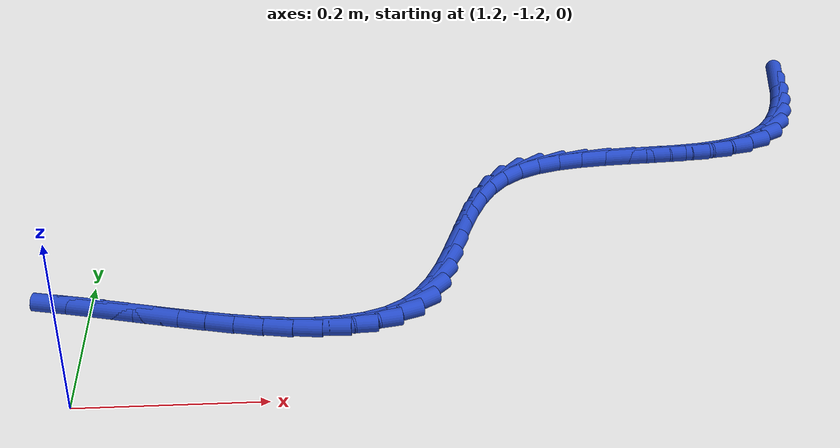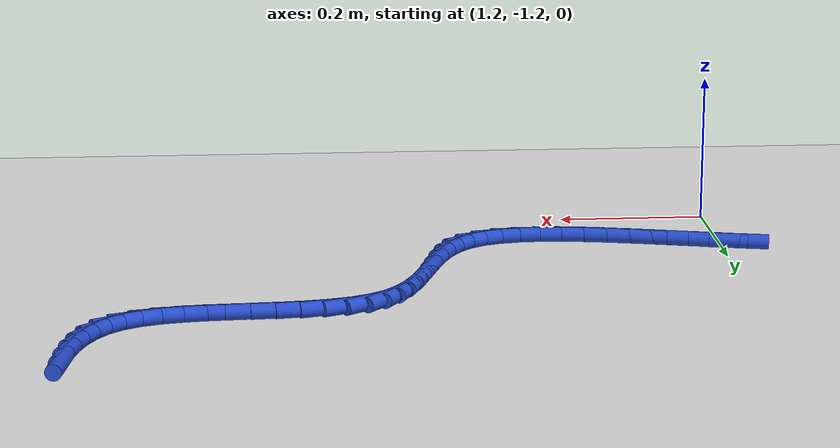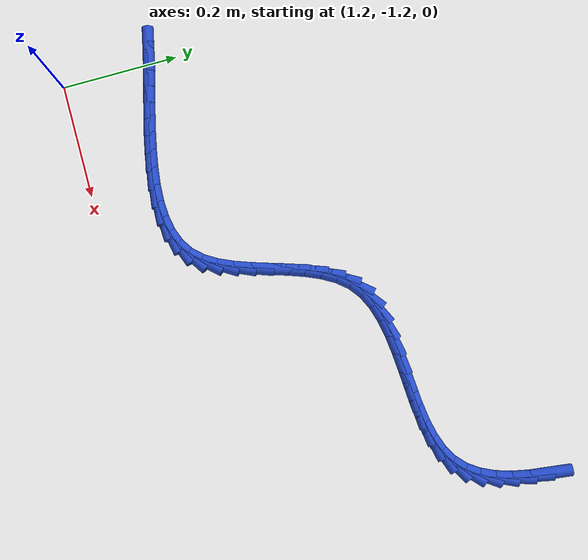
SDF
<sdf version="1.6">
 <world name="default">
  <model name="ground_plane">
   <static>1</static>
   <link name="link">
    <collision name="collision">
     <geometry><plane><normal>0 0 1</normal><size>100 100</size></plane></geometry>
     <surface><friction><ode><mu>100</mu><mu2>50</mu2></ode></friction></surface>
    </collision>
    <visual name="visual">
     <cast_shadows>0</cast_shadows>
     <geometry><plane><normal>0 0 1</normal><size>100 100</size></plane></geometry>
     <material>
      <script><uri>file://media/materials/scripts/gazebo.material</uri><name>Gazebo/WhiteGlow</name></script>
     </material>
    </visual>
   </link>
  </model>
  <model name="line">
   <link name="link_144">
    <pose>2.0479546052805664 -0.5950065517371383 0.01 0 1.57 1.4376507661106692</pose>
    <collision name="collision">
     <geometry><cylinder><radius>0.01</radius><length>0.08</length></cylinder></geometry>
    </collision>
    <visual name="visual">
     <material>
      <script><name>Gazebo/Blue</name><uri>file://media/materials/scripts/gazebo.material</uri></script>
     </material>
     <geometry><cylinder><radius>0.01</radius><length>0.08</length></cylinder></geometry>
    </visual>
   </link>
   <link name="link_145">
    <pose>2.0439442196380284 -0.6249486632755074 0.01 0 1.57 1.3622279371023438</pose>
    <collision name="collision">
     <geometry><cylinder><radius>0.01</radius><length>0.08</length></cylinder></geometry>
    </collision>
    <visual name="visual">
     <material>
      <script><name>Gazebo/Blue</name><uri>file://media/materials/scripts/gazebo.material</uri></script>
     </material>
     <geometry><cylinder><radius>0.01</radius><length>0.08</length></cylinder></geometry>
    </visual>
   </link>
   <link name="link_146">
    <pose>2.0379614732034974 -0.6532163334039117 0.01 0 1.57 1.2615805076250688</pose>
    <collision name="collision">
     <geometry><cylinder><radius>0.01</radius><length>0.08</length></cylinder></geometry>
    </collision>
    <visual name="visual">
     <material>
      <script><name>Gazebo/Blue</name><uri>file://media/materials/scripts/gazebo.material</uri></script>
     </material>
     <geometry><cylinder><radius>0.01</radius><length>0.08</length></cylinder></geometry>
    </visual>
   </link>
   <link name="link_147">
    <pose>2.02963819869982 -0.6792702817698875 0.01 0 1.57 1.1286086131254756</pose>
    <collision name="collision">
     <geometry><cylinder><radius>0.01</radius><length>0.08</length></cylinder></geometry>
    </collision>
    <visual name="visual">
     <material>
      <script><name>Gazebo/Blue</name><uri>file://media/materials/scripts/gazebo.material</uri></script>
     </material>
     <geometry><cylinder><radius>0.01</radius><length>0.08</length></cylinder></geometry>
    </visual>
   </link>
   <link name="link_148">
    <pose>2.0186062288498445 -0.7025712280209722 0.01 0 1.57 0.9566315821636667</pose>
    <collision name="collision">
     <geometry><cylinder><radius>0.01</radius><length>0.08</length></cylinder></geometry>
    </collision>
    <visual name="visual">
     <material>
      <script><name>Gazebo/Blue</name><uri>file://media/materials/scripts/gazebo.material</uri></script>
     </material>
     <geometry><cylinder><radius>0.01</radius><length>0.08</length></cylinder></geometry>
    </visual>
   </link>
   <link name="link_149">
    <pose>2.004497396376417 -0.7225798918047025 0.01 0 1.57 0.7446048535611302</pose>
    <collision name="collision">
     <geometry><cylinder><radius>0.01</radius><length>0.08</length></cylinder></geometry>
    </collision>
    <visual name="visual">
     <material>
      <script><name>Gazebo/Blue</name><uri>file://media/materials/scripts/gazebo.material</uri></script>
     </material>
     <geometry><cylinder><radius>0.01</radius><length>0.08</length></cylinder></geometry>
    </visual>
   </link>
   <link name="link_150">
    <pose>1.9869435340023853 -0.7387569927686164 0.01 0 1.57 0.5143462068614901</pose>
    <collision name="collision">
     <geometry><cylinder><radius>0.01</radius><length>0.08</length></cylinder></geometry>
    </collision>
    <visual name="visual">
     <material>
      <script><name>Gazebo/Blue</name><uri>file://media/materials/scripts/gazebo.material</uri></script>
     </material>
     <geometry><cylinder><radius>0.01</radius><length>0.08</length></cylinder></geometry>
    </visual>
   </link>
   <link name="link_151">
    <pose>1.965720147426876 -0.7507498767825329 0.01 0 1.57 0.3288322965216411</pose>
    <collision name="collision">
     <geometry><cylinder><radius>0.01</radius><length>0.08</length></cylinder></geometry>
    </collision>
    <visual name="visual">
     <material>
      <script><name>Gazebo/Blue</name><uri>file://media/materials/scripts/gazebo.material</uri></script>
     </material>
     <geometry><cylinder><radius>0.01</radius><length>0.08</length></cylinder></geometry>
    </visual>
   </link>
   <link name="link_152">
    <pose>1.941282278218264 -0.7590885832851447 0.01 0 1.57 0.20009955347567088</pose>
    <collision name="collision">
     <geometry><cylinder><radius>0.01</radius><length>0.08</length></cylinder></geometry>
    </collision>
    <visual name="visual">
     <material>
      <script><name>Gazebo/Blue</name><uri>file://media/materials/scripts/gazebo.material</uri></script>
     </material>
     <geometry><cylinder><radius>0.01</radius><length>0.08</length></cylinder></geometry>
    </visual>
   </link>
   <link name="link_153">
    <pose>1.9142856753664834 -0.7645638637073312 0.01 0 1.57 0.1172007658165977</pose>
    <collision name="collision">
     <geometry><cylinder><radius>0.01</radius><length>0.08</length></cylinder></geometry>
    </collision>
    <visual name="visual">
     <material>
      <script><name>Gazebo/Blue</name><uri>file://media/materials/scripts/gazebo.material</uri></script>
     </material>
     <geometry><cylinder><radius>0.01</radius><length>0.08</length></cylinder></geometry>
    </visual>
   </link>
   <link name="link_154">
    <pose>1.8853861174454984 -0.7679665079086057 0.01 0 1.57 0.07023346373087958</pose>
    <collision name="collision">
     <geometry><cylinder><radius>0.01</radius><length>0.08</length></cylinder></geometry>
    </collision>
    <visual name="visual">
     <material>
      <script><name>Gazebo/Blue</name><uri>file://media/materials/scripts/gazebo.material</uri></script>
     </material>
     <geometry><cylinder><radius>0.01</radius><length>0.08</length></cylinder></geometry>
    </visual>
   </link>
   <link name="link_155">
    <pose>1.8552393830292737 -0.7700873057484804 0.01 0 1.57 0.05297058218416866</pose>
    <collision name="collision">
     <geometry><cylinder><radius>0.01</radius><length>0.08</length></cylinder></geometry>
    </collision>
    <visual name="visual">
     <material>
      <script><name>Gazebo/Blue</name><uri>file://media/materials/scripts/gazebo.material</uri></script>
     </material>
     <geometry><cylinder><radius>0.01</radius><length>0.08</length></cylinder></geometry>
    </visual>
   </link>
   <link name="link_156">
    <pose>1.8245012506917744 -0.7717170470864678 0.01 0 1.57 0.06282035174361103</pose>
    <collision name="collision">
     <geometry><cylinder><radius>0.01</radius><length>0.08</length></cylinder></geometry>
    </collision>
    <visual name="visual">
     <material>
      <script><name>Gazebo/Blue</name><uri>file://media/materials/scripts/gazebo.material</uri></script>
     </material>
     <geometry><cylinder><radius>0.01</radius><length>0.08</length></cylinder></geometry>
    </visual>
   </link>
   <link name="link_157">
    <pose>1.7938274990069663 -0.7736465217820816 0.01 0 1.57 0.10048300315026917</pose>
    <collision name="collision">
     <geometry><cylinder><radius>0.01</radius><length>0.08</length></cylinder></geometry>
    </collision>
    <visual name="visual">
     <material>
      <script><name>Gazebo/Blue</name><uri>file://media/materials/scripts/gazebo.material</uri></script>
     </material>
     <geometry><cylinder><radius>0.01</radius><length>0.08</length></cylinder></geometry>
    </visual>
   </link>
   <link name="link_158">
    <pose>1.7638739065488127 -0.7766665196948335 0.01 0 1.57 0.16985593003074778</pose>
    <collision name="collision">
     <geometry><cylinder><radius>0.01</radius><length>0.08</length></cylinder></geometry>
    </collision>
    <visual name="visual">
     <material>
      <script><name>Gazebo/Blue</name><uri>file://media/materials/scripts/gazebo.material</uri></script>
     </material>
     <geometry><cylinder><radius>0.01</radius><length>0.08</length></cylinder></geometry>
    </visual>
   </link>
   <link name="link_159">
    <pose>1.7352962518912791 -0.7815678306842366 0.01 0 1.57 0.27791164235856064</pose>
    <collision name="collision">
     <geometry><cylinder><radius>0.01</radius><length>0.08</length></cylinder></geometry>
    </collision>
    <visual name="visual">
     <material>
      <script><name>Gazebo/Blue</name><uri>file://media/materials/scripts/gazebo.material</uri></script>
     </material>
     <geometry><cylinder><radius>0.01</radius><length>0.08</length></cylinder></geometry>
    </visual>
   </link>
   <link name="link_160">
    <pose>1.7087503136083313 -0.7891412446098036 0.01 0 1.57 0.433261512053706</pose>
    <collision name="collision">
     <geometry><cylinder><radius>0.01</radius><length>0.08</length></cylinder></geometry>
    </collision>
    <visual name="visual">
     <material>
      <script><name>Gazebo/Blue</name><uri>file://media/materials/scripts/gazebo.material</uri></script>
     </material>
     <geometry><cylinder><radius>0.01</radius><length>0.08</length></cylinder></geometry>
    </visual>
   </link>
   <link name="link_161">
    <pose>1.6848918702739328 -0.800177551331047 0.01 0 1.57 0.6404092126811372</pose>
    <collision name="collision">
     <geometry><cylinder><radius>0.01</radius><length>0.08</length></cylinder></geometry>
    </collision>
    <visual name="visual">
     <material>
      <script><name>Gazebo/Blue</name><uri>file://media/materials/scripts/gazebo.material</uri></script>
     </material>
     <geometry><cylinder><radius>0.01</radius><length>0.08</length></cylinder></geometry>
    </visual>
   </link>
   <link name="link_162">
    <pose>1.6643754595098388 -0.8154659718224161 0.01 0 1.57 0.8658150090090925</pose>
    <collision name="collision">
     <geometry><cylinder><radius>0.01</radius><length>0.08</length></cylinder></geometry>
    </collision>
    <visual name="visual">
     <material>
      <script><name>Gazebo/Blue</name><uri>file://media/materials/scripts/gazebo.material</uri></script>
     </material>
     <geometry><cylinder><radius>0.01</radius><length>0.08</length></cylinder></geometry>
    </visual>
   </link>
   <link name="link_163">
    <pose>1.6474810330420186 -0.8353221534493009 0.01 0 1.57 1.0388641176757252</pose>
    <collision name="collision">
     <geometry><cylinder><radius>0.01</radius><length>0.08</length></cylinder></geometry>
    </collision>
    <visual name="visual">
     <material>
      <script><name>Gazebo/Blue</name><uri>file://media/materials/scripts/gazebo.material</uri></script>
     </material>
     <geometry><cylinder><radius>0.01</radius><length>0.08</length></cylinder></geometry>
    </visual>
   </link>
   <link name="link_164">
    <pose>1.6335899707954051 -0.8589257160448123 0.01 0 1.57 1.1550752388052643</pose>
    <collision name="collision">
     <geometry><cylinder><radius>0.01</radius><length>0.08</length></cylinder></geometry>
    </collision>
    <visual name="visual">
     <material>
      <script><name>Gazebo/Blue</name><uri>file://media/materials/scripts/gazebo.material</uri></script>
     </material>
     <geometry><cylinder><radius>0.01</radius><length>0.08</length></cylinder></geometry>
    </visual>
   </link>
   <link name="link_165">
    <pose>1.6219516972603725 -0.8852894535896147 0.01 0 1.57 1.2250253661963921</pose>
    <collision name="collision">
     <geometry><cylinder><radius>0.01</radius><length>0.08</length></cylinder></geometry>
    </collision>
    <visual name="visual">
     <material>
      <script><name>Gazebo/Blue</name><uri>file://media/materials/scripts/gazebo.material</uri></script>
     </material>
     <geometry><cylinder><radius>0.01</radius><length>0.08</length></cylinder></geometry>
    </visual>
   </link>
   <link name="link_166">
    <pose>1.6118156369272965 -0.9134261600643732 0.01 0 1.57 1.2570454646384208</pose>
    <collision name="collision">
     <geometry><cylinder><radius>0.01</radius><length>0.08</length></cylinder></geometry>
    </collision>
    <visual name="visual">
     <material>
      <script><name>Gazebo/Blue</name><uri>file://media/materials/scripts/gazebo.material</uri></script>
     </material>
     <geometry><cylinder><radius>0.01</radius><length>0.08</length></cylinder></geometry>
    </visual>
   </link>
   <link name="link_167">
    <pose>1.6024312142865509 -0.9423486294497522 0.01 0 1.57 1.255021276156148</pose>
    <collision name="collision">
     <geometry><cylinder><radius>0.01</radius><length>0.08</length></cylinder></geometry>
    </collision>
    <visual name="visual">
     <material>
      <script><name>Gazebo/Blue</name><uri>file://media/materials/scripts/gazebo.material</uri></script>
     </material>
     <geometry><cylinder><radius>0.01</radius><length>0.08</length></cylinder></geometry>
    </visual>
   </link>
   <link name="link_168">
    <pose>1.5930478538285109 -0.9710696557264163 0.01 0 1.57 1.218146044553028</pose>
    <collision name="collision">
     <geometry><cylinder><radius>0.01</radius><length>0.08</length></cylinder></geometry>
    </collision>
    <visual name="visual">
     <material>
      <script><name>Gazebo/Blue</name><uri>file://media/materials/scripts/gazebo.material</uri></script>
     </material>
     <geometry><cylinder><radius>0.01</radius><length>0.08</length></cylinder></geometry>
    </visual>
   </link>
   <link name="link_169">
    <pose>1.5829149800435516 -0.9986020328750308 0.01 0 1.57 1.1406683261786505</pose>
    <collision name="collision">
     <geometry><cylinder><radius>0.01</radius><length>0.08</length></cylinder></geometry>
    </collision>
    <visual name="visual">
     <material>
      <script><name>Gazebo/Blue</name><uri>file://media/materials/scripts/gazebo.material</uri></script>
     </material>
     <geometry><cylinder><radius>0.01</radius><length>0.08</length></cylinder></geometry>
    </visual>
   </link>
   <link name="link_170">
    <pose>1.5712820174220463 -1.0239585548762593 0.01 0 1.57 1.0117851667576359</pose>
    <collision name="collision">
     <geometry><cylinder><radius>0.01</radius><length>0.08</length></cylinder></geometry>
    </collision>
    <visual name="visual">
     <material>
      <script><name>Gazebo/Blue</name><uri>file://media/materials/scripts/gazebo.material</uri></script>
     </material>
     <geometry><cylinder><radius>0.01</radius><length>0.08</length></cylinder></geometry>
    </visual>
   </link>
   <link name="link_171">
    <pose>1.5573983904543707 -1.046152015710767 0.01 0 1.57 0.8185494686263639</pose>
    <collision name="collision">
     <geometry><cylinder><radius>0.01</radius><length>0.08</length></cylinder></geometry>
    </collision>
    <visual name="visual">
     <material>
      <script><name>Gazebo/Blue</name><uri>file://media/materials/scripts/gazebo.material</uri></script>
     </material>
     <geometry><cylinder><radius>0.01</radius><length>0.08</length></cylinder></geometry>
    </visual>
   </link>
   <link name="link_172">
    <pose>1.5405135274405561 -1.064195213914431 0.01 0 1.57 0.5738152609893801</pose>
    <collision name="collision">
     <geometry><cylinder><radius>0.01</radius><length>0.08</length></cylinder></geometry>
    </collision>
    <visual name="visual">
     <material>
      <script><name>Gazebo/Blue</name><uri>file://media/materials/scripts/gazebo.material</uri></script>
     </material>
     <geometry><cylinder><radius>0.01</radius><length>0.08</length></cylinder></geometry>
    </visual>
   </link>
   <link name="link_173">
    <pose>1.5201119607739395 -1.0773820623297383 0.01 0 1.57 0.3523662917029297</pose>
    <collision name="collision">
     <geometry><cylinder><radius>0.01</radius><length>0.08</length></cylinder></geometry>
    </collision>
    <visual name="visual">
     <material>
      <script><name>Gazebo/Blue</name><uri>file://media/materials/scripts/gazebo.material</uri></script>
     </material>
     <geometry><cylinder><radius>0.01</radius><length>0.08</length></cylinder></geometry>
    </visual>
   </link>
   <link name="link_174">
    <pose>1.4965482273790724 -1.086046739483633 0.01 0 1.57 0.1783382182886969</pose>
    <collision name="collision">
     <geometry><cylinder><radius>0.01</radius><length>0.08</length></cylinder></geometry>
    </collision>
    <visual name="visual">
     <material>
      <script><name>Gazebo/Blue</name><uri>file://media/materials/scripts/gazebo.material</uri></script>
     </material>
     <geometry><cylinder><radius>0.01</radius><length>0.08</length></cylinder></geometry>
    </visual>
   </link>
   <link name="link_175">
    <pose>1.470378062081243 -1.0907639965258584 0.01 0 1.57 0.04760917695023276</pose>
    <collision name="collision">
     <geometry><cylinder><radius>0.01</radius><length>0.08</length></cylinder></geometry>
    </collision>
    <visual name="visual">
     <material>
      <script><name>Gazebo/Blue</name><uri>file://media/materials/scripts/gazebo.material</uri></script>
     </material>
     <geometry><cylinder><radius>0.01</radius><length>0.08</length></cylinder></geometry>
    </visual>
   </link>
   <link name="link_176">
    <pose>1.4421571997057425 -1.0921085846061578 0.01 0 1.57 -0.04886866322972237</pose>
    <collision name="collision">
     <geometry><cylinder><radius>0.01</radius><length>0.08</length></cylinder></geometry>
    </collision>
    <visual name="visual">
     <material>
      <script><name>Gazebo/Blue</name><uri>file://media/materials/scripts/gazebo.material</uri></script>
     </material>
     <geometry><cylinder><radius>0.01</radius><length>0.08</length></cylinder></geometry>
    </visual>
   </link>
   <link name="link_177">
    <pose>1.4124413750778575 -1.0906552548742747 0.01 0 1.57 -0.11936107688801528</pose>
    <collision name="collision">
     <geometry><cylinder><radius>0.01</radius><length>0.08</length></cylinder></geometry>
    </collision>
    <visual name="visual">
     <material>
      <script><name>Gazebo/Blue</name><uri>file://media/materials/scripts/gazebo.material</uri></script>
     </material>
     <geometry><cylinder><radius>0.01</radius><length>0.08</length></cylinder></geometry>
    </visual>
   </link>
   <link name="link_178">
    <pose>1.3817863230228786 -1.0869787584799524 0.01 0 1.57 -0.1699040443238077</pose>
    <collision name="collision">
     <geometry><cylinder><radius>0.01</radius><length>0.08</length></cylinder></geometry>
    </collision>
    <visual name="visual">
     <material>
      <script><name>Gazebo/Blue</name><uri>file://media/materials/scripts/gazebo.material</uri></script>
     </material>
     <geometry><cylinder><radius>0.01</radius><length>0.08</length></cylinder></geometry>
    </visual>
   </link>
   <link name="link_179">
    <pose>1.350747778366094 -1.081653846572934 0.01 0 1.57 -0.2044045802467928</pose>
    <collision name="collision">
     <geometry><cylinder><radius>0.01</radius><length>0.08</length></cylinder></geometry>
    </collision>
    <visual name="visual">
     <material>
      <script><name>Gazebo/Blue</name><uri>file://media/materials/scripts/gazebo.material</uri></script>
     </material>
     <geometry><cylinder><radius>0.01</radius><length>0.08</length></cylinder></geometry>
    </visual>
   </link>
   <link name="link_180">
    <pose>1.3198814759327935 -1.0752552703029634 0.01 0 1.57 -0.22513828540862868</pose>
    <collision name="collision">
     <geometry><cylinder><radius>0.01</radius><length>0.08</length></cylinder></geometry>
    </collision>
    <visual name="visual">
     <material>
      <script><name>Gazebo/Blue</name><uri>file://media/materials/scripts/gazebo.material</uri></script>
     </material>
     <geometry><cylinder><radius>0.01</radius><length>0.08</length></cylinder></geometry>
    </visual>
   </link>
   <link name="link_181">
    <pose>1.2897291475725965 -1.0683497567994618 0.01 0 1.57 -0.23619244163388067</pose>
    <collision name="collision">
     <geometry><cylinder><radius>0.01</radius><length>0.08</length></cylinder></geometry>
    </collision>
    <visual name="visual">
     <material>
      <script><name>Gazebo/Blue</name><uri>file://media/materials/scripts/gazebo.material</uri></script>
     </material>
     <geometry><cylinder><radius>0.01</radius><length>0.08</length></cylinder></geometry>
    </visual>
   </link>
   <link name="link_182">
    <pose>1.260503775288877 -1.0613156521284703 0.01 0 1.57 -0.24068177321587164</pose>
    <collision name="collision">
     <geometry><cylinder><radius>0.01</radius><length>0.08</length></cylinder></geometry>
    </collision>
    <visual name="visual">
     <material>
      <script><name>Gazebo/Blue</name><uri>file://media/materials/scripts/gazebo.material</uri></script>
     </material>
     <geometry><cylinder><radius>0.01</radius><length>0.08</length></cylinder></geometry>
    </visual>
   </link>
   <link name="link_183">
    <pose>1.2320858359388638 -1.054340769421262 0.01 0 1.57 -0.23818632343317864</pose>
    <collision name="collision">
     <geometry><cylinder><radius>0.01</radius><length>0.08</length></cylinder></geometry>
    </collision>
    <visual name="visual">
     <material>
      <script><name>Gazebo/Blue</name><uri>file://media/materials/scripts/gazebo.material</uri></script>
     </material>
     <geometry><cylinder><radius>0.01</radius><length>0.08</length></cylinder></geometry>
    </visual>
   </link>
   <link name="link_184">
    <pose>1.2043410523137645 -1.0476044673971063 0.01 0 1.57 -0.22819700661558892</pose>
    <collision name="collision">
     <geometry><cylinder><radius>0.01</radius><length>0.08</length></cylinder></geometry>
    </collision>
    <visual name="visual">
     <material>
      <script><name>Gazebo/Blue</name><uri>file://media/materials/scripts/gazebo.material</uri></script>
     </material>
     <geometry><cylinder><radius>0.01</radius><length>0.08</length></cylinder></geometry>
    </visual>
   </link>
   <link name="link_185">
    <pose>1.1771351472047866 -1.0412861047752715 0.01 0 1.57 -0.2103058129660766</pose>
    <collision name="collision">
     <geometry><cylinder><radius>0.01</radius><length>0.08</length></cylinder></geometry>
    </collision>
    <visual name="visual">
     <material>
      <script><name>Gazebo/Blue</name><uri>file://media/materials/scripts/gazebo.material</uri></script>
     </material>
     <geometry><cylinder><radius>0.01</radius><length>0.08</length></cylinder></geometry>
    </visual>
   </link>
  </model>
 </world>
</sdf>
